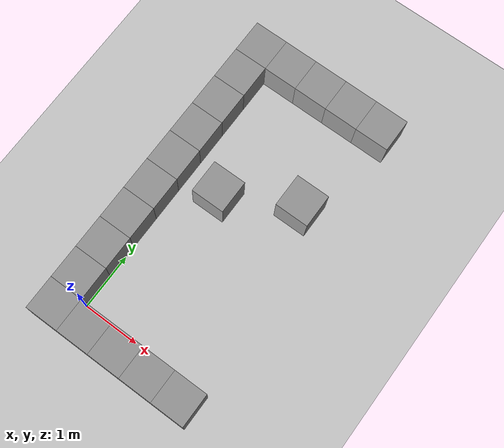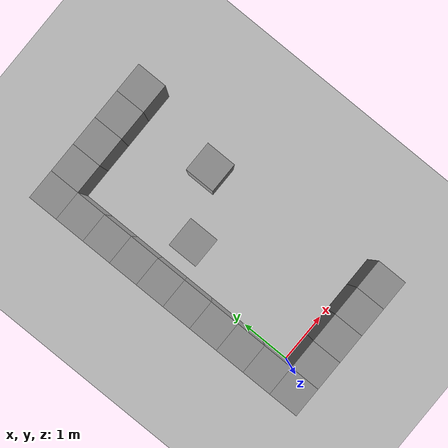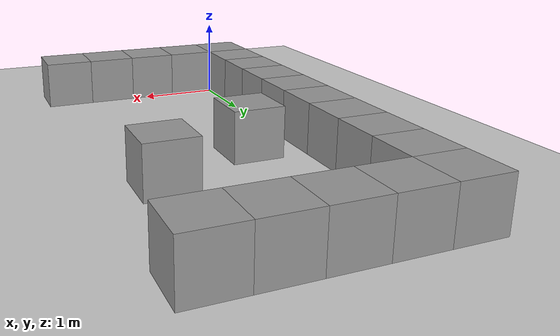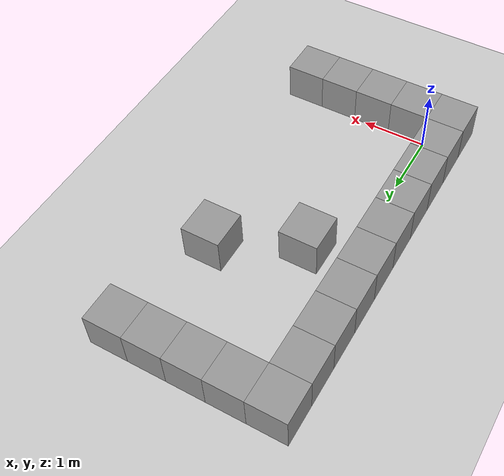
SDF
<sdf version="1.4">
 <world name="default">
  <include><uri>model://ground_plane</uri></include>
  <include><uri>model://sun</uri></include>
  <model name="unit_box_id_2">
   <static>true</static>
   <pose>0.6 2.6999999999999997 0.3 0 0 0</pose>
   <link name="link">
    <inertial>
     <mass>1</mass>
     <inertia>
      <ixx>0.166667</ixx>
      <ixy>0</ixy>
      <ixz>0</ixz>
      <iyy>0.166667</iyy>
      <iyz>0</iyz>
      <izz>0.166667</izz>
     </inertia>
     <pose>0.6 2.6999999999999997 0.3 0 0 0</pose>
    </inertial>
    <collision name="collision"><geometry><box><size>0.6 0.6 0.6</size></box></geometry></collision>
    <visual name="visual">
     <geometry><box><size>0.6 0.6 0.6</size></box></geometry>
     <material>
      <script><name>Gazebo/Grey</name><uri>file://media/materials/scripts/gazebo.material</uri></script>
     </material>
    </visual>
   </link>
  </model>
  <model name="unit_box_id_3">
   <static>true</static>
   <pose>1.8 3.3 0.3 0 0 0</pose>
   <link name="link">
    <inertial>
     <mass>1</mass>
     <inertia>
      <ixx>0.166667</ixx>
      <ixy>0</ixy>
      <ixz>0</ixz>
      <iyy>0.166667</iyy>
      <iyz>0</iyz>
      <izz>0.166667</izz>
     </inertia>
     <pose>1.8 3.3 0.3 0 0 0</pose>
    </inertial>
    <collision name="collision"><geometry><box><size>0.6 0.6 0.6</size></box></geometry></collision>
    <visual name="visual">
     <geometry><box><size>0.6 0.6 0.6</size></box></geometry>
     <material>
      <script><name>Gazebo/Grey</name><uri>file://media/materials/scripts/gazebo.material</uri></script>
     </material>
    </visual>
   </link>
  </model>
  <model name="unit_box_id_-0.6_-0.6">
   <static>true</static>
   <pose>-0.3 -0.3 0.3 0 0 0</pose>
   <link name="link">
    <inertial>
     <mass>1</mass>
     <inertia>
      <ixx>0.166667</ixx>
      <ixy>0</ixy>
      <ixz>0</ixz>
      <iyy>0.166667</iyy>
      <iyz>0</iyz>
      <izz>0.166667</izz>
     </inertia>
     <pose>-0.3 -0.3 0.3 0 0 0</pose>
    </inertial>
    <collision name="collision"><geometry><box><size>0.6 0.6 0.6</size></box></geometry></collision>
    <visual name="visual">
     <geometry><box><size>0.6 0.6 0.6</size></box></geometry>
     <material>
      <script><name>Gazebo/Grey</name><uri>file://media/materials/scripts/gazebo.material</uri></script>
     </material>
    </visual>
   </link>
  </model>
  <model name="unit_box_id_-0.6_0.0">
   <static>true</static>
   <pose>-0.3 0.3 0.3 0 0 0</pose>
   <link name="link">
    <inertial>
     <mass>1</mass>
     <inertia>
      <ixx>0.166667</ixx>
      <ixy>0</ixy>
      <ixz>0</ixz>
      <iyy>0.166667</iyy>
      <iyz>0</iyz>
      <izz>0.166667</izz>
     </inertia>
     <pose>-0.3 0.3 0.3 0 0 0</pose>
    </inertial>
    <collision name="collision"><geometry><box><size>0.6 0.6 0.6</size></box></geometry></collision>
    <visual name="visual">
     <geometry><box><size>0.6 0.6 0.6</size></box></geometry>
     <material>
      <script><name>Gazebo/Grey</name><uri>file://media/materials/scripts/gazebo.material</uri></script>
     </material>
    </visual>
   </link>
  </model>
  <model name="unit_box_id_-0.6_0.6">
   <static>true</static>
   <pose>-0.3 0.8999999999999999 0.3 0 0 0</pose>
   <link name="link">
    <inertial>
     <mass>1</mass>
     <inertia>
      <ixx>0.166667</ixx>
      <ixy>0</ixy>
      <ixz>0</ixz>
      <iyy>0.166667</iyy>
      <iyz>0</iyz>
      <izz>0.166667</izz>
     </inertia>
     <pose>-0.3 0.8999999999999999 0.3 0 0 0</pose>
    </inertial>
    <collision name="collision"><geometry><box><size>0.6 0.6 0.6</size></box></geometry></collision>
    <visual name="visual">
     <geometry><box><size>0.6 0.6 0.6</size></box></geometry>
     <material>
      <script><name>Gazebo/Grey</name><uri>file://media/materials/scripts/gazebo.material</uri></script>
     </material>
    </visual>
   </link>
  </model>
  <model name="unit_box_id_-0.6_1.2">
   <static>true</static>
   <pose>-0.3 1.5 0.3 0 0 0</pose>
   <link name="link">
    <inertial>
     <mass>1</mass>
     <inertia>
      <ixx>0.166667</ixx>
      <ixy>0</ixy>
      <ixz>0</ixz>
      <iyy>0.166667</iyy>
      <iyz>0</iyz>
      <izz>0.166667</izz>
     </inertia>
     <pose>-0.3 1.5 0.3 0 0 0</pose>
    </inertial>
    <collision name="collision"><geometry><box><size>0.6 0.6 0.6</size></box></geometry></collision>
    <visual name="visual">
     <geometry><box><size>0.6 0.6 0.6</size></box></geometry>
     <material>
      <script><name>Gazebo/Grey</name><uri>file://media/materials/scripts/gazebo.material</uri></script>
     </material>
    </visual>
   </link>
  </model>
  <model name="unit_box_id_-0.6_1.7999999999999998">
   <static>true</static>
   <pose>-0.3 2.0999999999999996 0.3 0 0 0</pose>
   <link name="link">
    <inertial>
     <mass>1</mass>
     <inertia>
      <ixx>0.166667</ixx>
      <ixy>0</ixy>
      <ixz>0</ixz>
      <iyy>0.166667</iyy>
      <iyz>0</iyz>
      <izz>0.166667</izz>
     </inertia>
     <pose>-0.3 2.0999999999999996 0.3 0 0 0</pose>
    </inertial>
    <collision name="collision"><geometry><box><size>0.6 0.6 0.6</size></box></geometry></collision>
    <visual name="visual">
     <geometry><box><size>0.6 0.6 0.6</size></box></geometry>
     <material>
      <script><name>Gazebo/Grey</name><uri>file://media/materials/scripts/gazebo.material</uri></script>
     </material>
    </visual>
   </link>
  </model>
  <model name="unit_box_id_-0.6_2.4">
   <static>true</static>
   <pose>-0.3 2.6999999999999997 0.3 0 0 0</pose>
   <link name="link">
    <inertial>
     <mass>1</mass>
     <inertia>
      <ixx>0.166667</ixx>
      <ixy>0</ixy>
      <ixz>0</ixz>
      <iyy>0.166667</iyy>
      <iyz>0</iyz>
      <izz>0.166667</izz>
     </inertia>
     <pose>-0.3 2.6999999999999997 0.3 0 0 0</pose>
    </inertial>
    <collision name="collision"><geometry><box><size>0.6 0.6 0.6</size></box></geometry></collision>
    <visual name="visual">
     <geometry><box><size>0.6 0.6 0.6</size></box></geometry>
     <material>
      <script><name>Gazebo/Grey</name><uri>file://media/materials/scripts/gazebo.material</uri></script>
     </material>
    </visual>
   </link>
  </model>
  <model name="unit_box_id_-0.6_3.0">
   <static>true</static>
   <pose>-0.3 3.3 0.3 0 0 0</pose>
   <link name="link">
    <inertial>
     <mass>1</mass>
     <inertia>
      <ixx>0.166667</ixx>
      <ixy>0</ixy>
      <ixz>0</ixz>
      <iyy>0.166667</iyy>
      <iyz>0</iyz>
      <izz>0.166667</izz>
     </inertia>
     <pose>-0.3 3.3 0.3 0 0 0</pose>
    </inertial>
    <collision name="collision"><geometry><box><size>0.6 0.6 0.6</size></box></geometry></collision>
    <visual name="visual">
     <geometry><box><size>0.6 0.6 0.6</size></box></geometry>
     <material>
      <script><name>Gazebo/Grey</name><uri>file://media/materials/scripts/gazebo.material</uri></script>
     </material>
    </visual>
   </link>
  </model>
  <model name="unit_box_id_-0.6_3.5999999999999996">
   <static>true</static>
   <pose>-0.3 3.8999999999999995 0.3 0 0 0</pose>
   <link name="link">
    <inertial>
     <mass>1</mass>
     <inertia>
      <ixx>0.166667</ixx>
      <ixy>0</ixy>
      <ixz>0</ixz>
      <iyy>0.166667</iyy>
      <iyz>0</iyz>
      <izz>0.166667</izz>
     </inertia>
     <pose>-0.3 3.8999999999999995 0.3 0 0 0</pose>
    </inertial>
    <collision name="collision"><geometry><box><size>0.6 0.6 0.6</size></box></geometry></collision>
    <visual name="visual">
     <geometry><box><size>0.6 0.6 0.6</size></box></geometry>
     <material>
      <script><name>Gazebo/Grey</name><uri>file://media/materials/scripts/gazebo.material</uri></script>
     </material>
    </visual>
   </link>
  </model>
  <model name="unit_box_id_-0.6_4.2">
   <static>true</static>
   <pose>-0.3 4.5 0.3 0 0 0</pose>
   <link name="link">
    <inertial>
     <mass>1</mass>
     <inertia>
      <ixx>0.166667</ixx>
      <ixy>0</ixy>
      <ixz>0</ixz>
      <iyy>0.166667</iyy>
      <iyz>0</iyz>
      <izz>0.166667</izz>
     </inertia>
     <pose>-0.3 4.5 0.3 0 0 0</pose>
    </inertial>
    <collision name="collision"><geometry><box><size>0.6 0.6 0.6</size></box></geometry></collision>
    <visual name="visual">
     <geometry><box><size>0.6 0.6 0.6</size></box></geometry>
     <material>
      <script><name>Gazebo/Grey</name><uri>file://media/materials/scripts/gazebo.material</uri></script>
     </material>
    </visual>
   </link>
  </model>
  <model name="unit_box_id_-0.6_4.8">
   <static>true</static>
   <pose>-0.3 5.1 0.3 0 0 0</pose>
   <link name="link">
    <inertial>
     <mass>1</mass>
     <inertia>
      <ixx>0.166667</ixx>
      <ixy>0</ixy>
      <ixz>0</ixz>
      <iyy>0.166667</iyy>
      <iyz>0</iyz>
      <izz>0.166667</izz>
     </inertia>
     <pose>-0.3 5.1 0.3 0 0 0</pose>
    </inertial>
    <collision name="collision"><geometry><box><size>0.6 0.6 0.6</size></box></geometry></collision>
    <visual name="visual">
     <geometry><box><size>0.6 0.6 0.6</size></box></geometry>
     <material>
      <script><name>Gazebo/Grey</name><uri>file://media/materials/scripts/gazebo.material</uri></script>
     </material>
    </visual>
   </link>
  </model>
  <model name="unit_box_id_-0.6_-0.6">
   <static>true</static>
   <pose>-0.3 -0.3 0.3 0 0 0</pose>
   <link name="link">
    <inertial>
     <mass>1</mass>
     <inertia>
      <ixx>0.166667</ixx>
      <ixy>0</ixy>
      <ixz>0</ixz>
      <iyy>0.166667</iyy>
      <iyz>0</iyz>
      <izz>0.166667</izz>
     </inertia>
     <pose>-0.3 -0.3 0.3 0 0 0</pose>
    </inertial>
    <collision name="collision"><geometry><box><size>0.6 0.6 0.6</size></box></geometry></collision>
    <visual name="visual">
     <geometry><box><size>0.6 0.6 0.6</size></box></geometry>
     <material>
      <script><name>Gazebo/Grey</name><uri>file://media/materials/scripts/gazebo.material</uri></script>
     </material>
    </visual>
   </link>
  </model>
  <model name="unit_box_id_-0.6_4.8">
   <static>true</static>
   <pose>-0.3 5.1 0.3 0 0 0</pose>
   <link name="link">
    <inertial>
     <mass>1</mass>
     <inertia>
      <ixx>0.166667</ixx>
      <ixy>0</ixy>
      <ixz>0</ixz>
      <iyy>0.166667</iyy>
      <iyz>0</iyz>
      <izz>0.166667</izz>
     </inertia>
     <pose>-0.3 5.1 0.3 0 0 0</pose>
    </inertial>
    <collision name="collision"><geometry><box><size>0.6 0.6 0.6</size></box></geometry></collision>
    <visual name="visual">
     <geometry><box><size>0.6 0.6 0.6</size></box></geometry>
     <material>
      <script><name>Gazebo/Grey</name><uri>file://media/materials/scripts/gazebo.material</uri></script>
     </material>
    </visual>
   </link>
  </model>
  <model name="unit_box_id_0.0_-0.6">
   <static>true</static>
   <pose>0.3 -0.3 0.3 0 0 0</pose>
   <link name="link">
    <inertial>
     <mass>1</mass>
     <inertia>
      <ixx>0.166667</ixx>
      <ixy>0</ixy>
      <ixz>0</ixz>
      <iyy>0.166667</iyy>
      <iyz>0</iyz>
      <izz>0.166667</izz>
     </inertia>
     <pose>0.3 -0.3 0.3 0 0 0</pose>
    </inertial>
    <collision name="collision"><geometry><box><size>0.6 0.6 0.6</size></box></geometry></collision>
    <visual name="visual">
     <geometry><box><size>0.6 0.6 0.6</size></box></geometry>
     <material>
      <script><name>Gazebo/Grey</name><uri>file://media/materials/scripts/gazebo.material</uri></script>
     </material>
    </visual>
   </link>
  </model>
  <model name="unit_box_id_0.0_4.8">
   <static>true</static>
   <pose>0.3 5.1 0.3 0 0 0</pose>
   <link name="link">
    <inertial>
     <mass>1</mass>
     <inertia>
      <ixx>0.166667</ixx>
      <ixy>0</ixy>
      <ixz>0</ixz>
      <iyy>0.166667</iyy>
      <iyz>0</iyz>
      <izz>0.166667</izz>
     </inertia>
     <pose>0.3 5.1 0.3 0 0 0</pose>
    </inertial>
    <collision name="collision"><geometry><box><size>0.6 0.6 0.6</size></box></geometry></collision>
    <visual name="visual">
     <geometry><box><size>0.6 0.6 0.6</size></box></geometry>
     <material>
      <script><name>Gazebo/Grey</name><uri>file://media/materials/scripts/gazebo.material</uri></script>
     </material>
    </visual>
   </link>
  </model>
  <model name="unit_box_id_0.6_-0.6">
   <static>true</static>
   <pose>0.8999999999999999 -0.3 0.3 0 0 0</pose>
   <link name="link">
    <inertial>
     <mass>1</mass>
     <inertia>
      <ixx>0.166667</ixx>
      <ixy>0</ixy>
      <ixz>0</ixz>
      <iyy>0.166667</iyy>
      <iyz>0</iyz>
      <izz>0.166667</izz>
     </inertia>
     <pose>0.8999999999999999 -0.3 0.3 0 0 0</pose>
    </inertial>
    <collision name="collision"><geometry><box><size>0.6 0.6 0.6</size></box></geometry></collision>
    <visual name="visual">
     <geometry><box><size>0.6 0.6 0.6</size></box></geometry>
     <material>
      <script><name>Gazebo/Grey</name><uri>file://media/materials/scripts/gazebo.material</uri></script>
     </material>
    </visual>
   </link>
  </model>
  <model name="unit_box_id_0.6_4.8">
   <static>true</static>
   <pose>0.8999999999999999 5.1 0.3 0 0 0</pose>
   <link name="link">
    <inertial>
     <mass>1</mass>
     <inertia>
      <ixx>0.166667</ixx>
      <ixy>0</ixy>
      <ixz>0</ixz>
      <iyy>0.166667</iyy>
      <iyz>0</iyz>
      <izz>0.166667</izz>
     </inertia>
     <pose>0.8999999999999999 5.1 0.3 0 0 0</pose>
    </inertial>
    <collision name="collision"><geometry><box><size>0.6 0.6 0.6</size></box></geometry></collision>
    <visual name="visual">
     <geometry><box><size>0.6 0.6 0.6</size></box></geometry>
     <material>
      <script><name>Gazebo/Grey</name><uri>file://media/materials/scripts/gazebo.material</uri></script>
     </material>
    </visual>
   </link>
  </model>
  <model name="unit_box_id_1.2_-0.6">
   <static>true</static>
   <pose>1.5 -0.3 0.3 0 0 0</pose>
   <link name="link">
    <inertial>
     <mass>1</mass>
     <inertia>
      <ixx>0.166667</ixx>
      <ixy>0</ixy>
      <ixz>0</ixz>
      <iyy>0.166667</iyy>
      <iyz>0</iyz>
      <izz>0.166667</izz>
     </inertia>
     <pose>1.5 -0.3 0.3 0 0 0</pose>
    </inertial>
    <collision name="collision"><geometry><box><size>0.6 0.6 0.6</size></box></geometry></collision>
    <visual name="visual">
     <geometry><box><size>0.6 0.6 0.6</size></box></geometry>
     <material>
      <script><name>Gazebo/Grey</name><uri>file://media/materials/scripts/gazebo.material</uri></script>
     </material>
    </visual>
   </link>
  </model>
  <model name="unit_box_id_1.2_4.8">
   <static>true</static>
   <pose>1.5 5.1 0.3 0 0 0</pose>
   <link name="link">
    <inertial>
     <mass>1</mass>
     <inertia>
      <ixx>0.166667</ixx>
      <ixy>0</ixy>
      <ixz>0</ixz>
      <iyy>0.166667</iyy>
      <iyz>0</iyz>
      <izz>0.166667</izz>
     </inertia>
     <pose>1.5 5.1 0.3 0 0 0</pose>
    </inertial>
    <collision name="collision"><geometry><box><size>0.6 0.6 0.6</size></box></geometry></collision>
    <visual name="visual">
     <geometry><box><size>0.6 0.6 0.6</size></box></geometry>
     <material>
      <script><name>Gazebo/Grey</name><uri>file://media/materials/scripts/gazebo.material</uri></script>
     </material>
    </visual>
   </link>
  </model>
  <model name="unit_box_id_1.7999999999999998_-0.6">
   <static>true</static>
   <pose>2.0999999999999996 -0.3 0.3 0 0 0</pose>
   <link name="link">
    <inertial>
     <mass>1</mass>
     <inertia>
      <ixx>0.166667</ixx>
      <ixy>0</ixy>
      <ixz>0</ixz>
      <iyy>0.166667</iyy>
      <iyz>0</iyz>
      <izz>0.166667</izz>
     </inertia>
     <pose>2.0999999999999996 -0.3 0.3 0 0 0</pose>
    </inertial>
    <collision name="collision"><geometry><box><size>0.6 0.6 0.6</size></box></geometry></collision>
    <visual name="visual">
     <geometry><box><size>0.6 0.6 0.6</size></box></geometry>
     <material>
      <script><name>Gazebo/Grey</name><uri>file://media/materials/scripts/gazebo.material</uri></script>
     </material>
    </visual>
   </link>
  </model>
  <model name="unit_box_id_1.7999999999999998_4.8">
   <static>true</static>
   <pose>2.0999999999999996 5.1 0.3 0 0 0</pose>
   <link name="link">
    <inertial>
     <mass>1</mass>
     <inertia>
      <ixx>0.166667</ixx>
      <ixy>0</ixy>
      <ixz>0</ixz>
      <iyy>0.166667</iyy>
      <iyz>0</iyz>
      <izz>0.166667</izz>
     </inertia>
     <pose>2.0999999999999996 5.1 0.3 0 0 0</pose>
    </inertial>
    <collision name="collision"><geometry><box><size>0.6 0.6 0.6</size></box></geometry></collision>
    <visual name="visual">
     <geometry><box><size>0.6 0.6 0.6</size></box></geometry>
     <material>
      <script><name>Gazebo/Grey</name><uri>file://media/materials/scripts/gazebo.material</uri></script>
     </material>
    </visual>
   </link>
  </model>
 </world>
</sdf>
